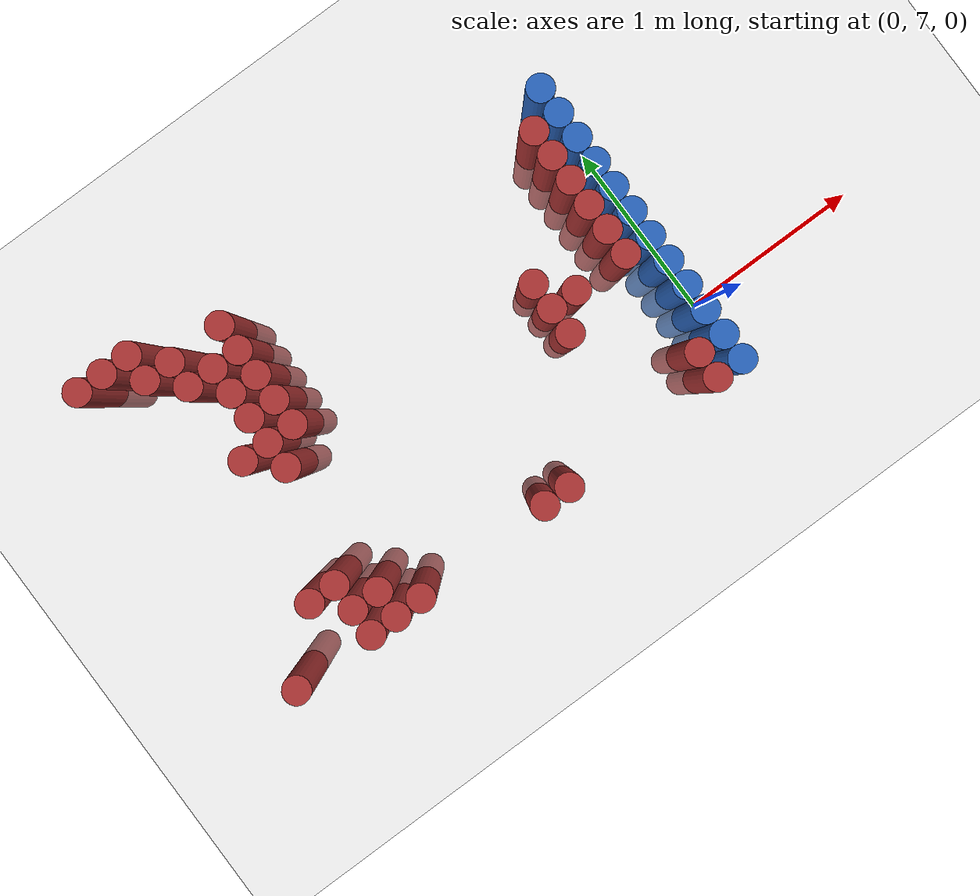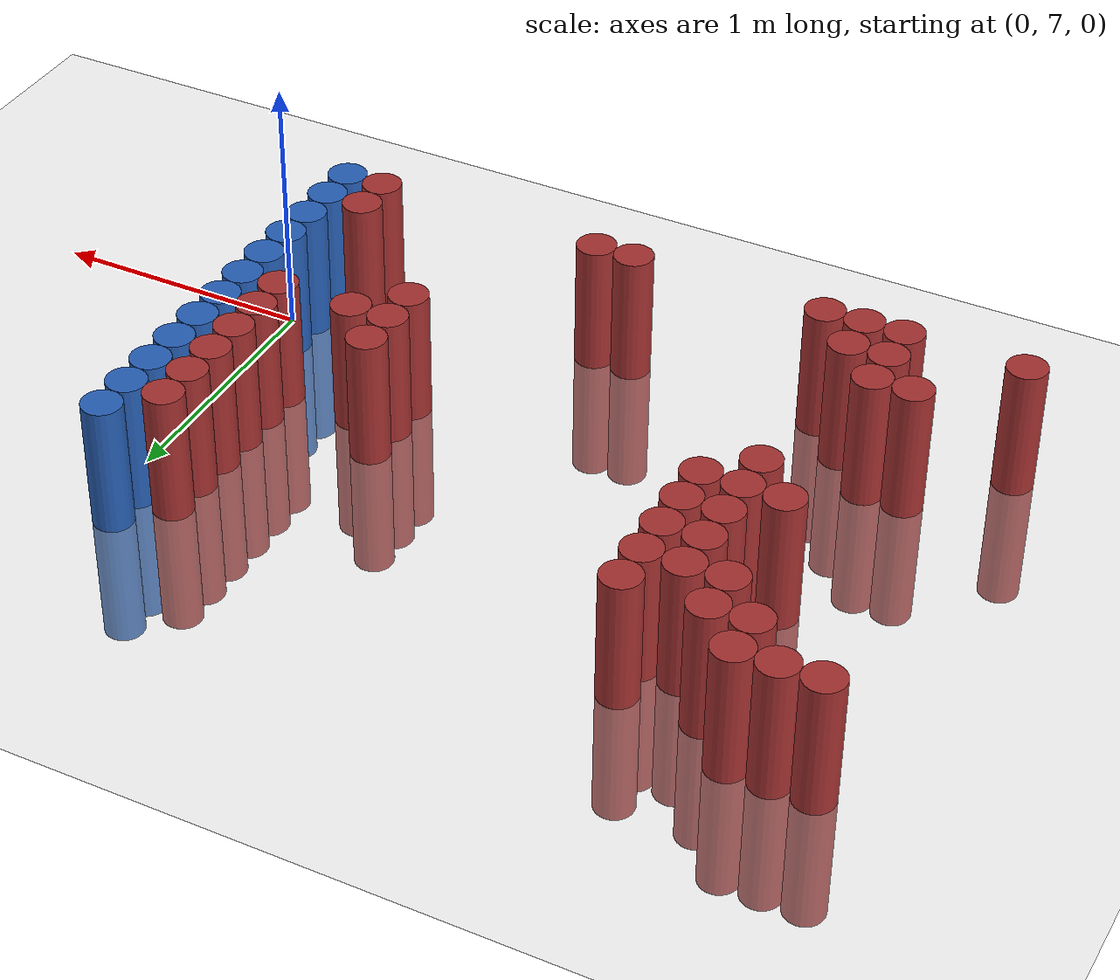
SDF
<sdf version="1.6">
 <world name="default">
  <model name="ground_plane">
   <static>1</static>
   <link name="link">
    <collision name="collision">
     <geometry><plane><normal>0 0 1</normal><size>100 100</size></plane></geometry>
     <surface><friction><ode><mu>100</mu><mu2>50</mu2></ode></friction></surface>
    </collision>
    <visual name="visual">
     <cast_shadows>0</cast_shadows>
     <geometry><plane><normal>0 0 1</normal><size>100 100</size></plane></geometry>
     <material>
      <script><uri>file://media/materials/scripts/gazebo.material</uri><name>Gazebo/Grey</name></script>
     </material>
    </visual>
   </link>
  </model>
  <model name="unit_cylinder_172">
   <static>1</static>
   <pose>-2.775000 6.675000 0.000000 0.000000 0.000000 0.000000</pose>
   <link name="link">
    <inertial>
     <mass>1</mass>
     <inertia><ixx>0.145833</ixx><ixy>0</ixy><ixz>0</ixz><iyy>0.145833</iyy><iyz>0</iyz><izz>0.125</izz></inertia>
    </inertial>
    <collision name="collision">
     <geometry><cylinder><radius>0.075000</radius><length>1</length></cylinder></geometry>
    </collision>
    <visual name="visual">
     <geometry><cylinder><radius>0.075000</radius><length>1</length></cylinder></geometry>
     <material>
      <ambient>0.648000 0.192000 0.192000 1</ambient>
      <diffuse>0.648000 0.192000 0.192000 1</diffuse>
     </material>
     <material>
      <script><name>Gazebo/Grey</name><uri>file://media/materials/scripts/gazebo.material</uri></script>
     </material>
    </visual>
   </link>
  </model>
  <model name="unit_cylinder_173">
   <static>1</static>
   <pose>-2.775000 8.475000 0.000000 0.000000 0.000000 0.000000</pose>
   <link name="link">
    <inertial>
     <mass>1</mass>
     <inertia><ixx>0.145833</ixx><ixy>0</ixy><ixz>0</ixz><iyy>0.145833</iyy><iyz>0</iyz><izz>0.125</izz></inertia>
    </inertial>
    <collision name="collision">
     <geometry><cylinder><radius>0.075000</radius><length>1</length></cylinder></geometry>
    </collision>
    <visual name="visual">
     <geometry><cylinder><radius>0.075000</radius><length>1</length></cylinder></geometry>
     <material>
      <ambient>0.648000 0.192000 0.192000 1</ambient>
      <diffuse>0.648000 0.192000 0.192000 1</diffuse>
     </material>
     <material>
      <script><name>Gazebo/Grey</name><uri>file://media/materials/scripts/gazebo.material</uri></script>
     </material>
    </visual>
   </link>
  </model>
  <model name="unit_cylinder_177">
   <static>1</static>
   <pose>-2.625000 8.475000 0.000000 0.000000 0.000000 0.000000</pose>
   <link name="link">
    <inertial>
     <mass>1</mass>
     <inertia><ixx>0.145833</ixx><ixy>0</ixy><ixz>0</ixz><iyy>0.145833</iyy><iyz>0</iyz><izz>0.125</izz></inertia>
    </inertial>
    <collision name="collision">
     <geometry><cylinder><radius>0.075000</radius><length>1</length></cylinder></geometry>
    </collision>
    <visual name="visual">
     <geometry><cylinder><radius>0.075000</radius><length>1</length></cylinder></geometry>
     <material>
      <ambient>0.648000 0.192000 0.192000 1</ambient>
      <diffuse>0.648000 0.192000 0.192000 1</diffuse>
     </material>
     <material>
      <script><name>Gazebo/Grey</name><uri>file://media/materials/scripts/gazebo.material</uri></script>
     </material>
    </visual>
   </link>
  </model>
  <model name="unit_cylinder_179">
   <static>1</static>
   <pose>-2.475000 6.975000 0.000000 0.000000 0.000000 0.000000</pose>
   <link name="link">
    <inertial>
     <mass>1</mass>
     <inertia><ixx>0.145833</ixx><ixy>0</ixy><ixz>0</ixz><iyy>0.145833</iyy><iyz>0</iyz><izz>0.125</izz></inertia>
    </inertial>
    <collision name="collision">
     <geometry><cylinder><radius>0.075000</radius><length>1</length></cylinder></geometry>
    </collision>
    <visual name="visual">
     <geometry><cylinder><radius>0.075000</radius><length>1</length></cylinder></geometry>
     <material>
      <ambient>0.648000 0.192000 0.192000 1</ambient>
      <diffuse>0.648000 0.192000 0.192000 1</diffuse>
     </material>
     <material>
      <script><name>Gazebo/Grey</name><uri>file://media/materials/scripts/gazebo.material</uri></script>
     </material>
    </visual>
   </link>
  </model>
  <model name="unit_cylinder_180">
   <static>1</static>
   <pose>-2.475000 8.325000 0.000000 0.000000 0.000000 0.000000</pose>
   <link name="link">
    <inertial>
     <mass>1</mass>
     <inertia><ixx>0.145833</ixx><ixy>0</ixy><ixz>0</ixz><iyy>0.145833</iyy><iyz>0</iyz><izz>0.125</izz></inertia>
    </inertial>
    <collision name="collision">
     <geometry><cylinder><radius>0.075000</radius><length>1</length></cylinder></geometry>
    </collision>
    <visual name="visual">
     <geometry><cylinder><radius>0.075000</radius><length>1</length></cylinder></geometry>
     <material>
      <ambient>0.648000 0.192000 0.192000 1</ambient>
      <diffuse>0.648000 0.192000 0.192000 1</diffuse>
     </material>
     <material>
      <script><name>Gazebo/Grey</name><uri>file://media/materials/scripts/gazebo.material</uri></script>
     </material>
    </visual>
   </link>
  </model>
  <model name="unit_cylinder_181">
   <static>1</static>
   <pose>-2.475000 8.475000 0.000000 0.000000 0.000000 0.000000</pose>
   <link name="link">
    <inertial>
     <mass>1</mass>
     <inertia><ixx>0.145833</ixx><ixy>0</ixy><ixz>0</ixz><iyy>0.145833</iyy><iyz>0</iyz><izz>0.125</izz></inertia>
    </inertial>
    <collision name="collision">
     <geometry><cylinder><radius>0.075000</radius><length>1</length></cylinder></geometry>
    </collision>
    <visual name="visual">
     <geometry><cylinder><radius>0.075000</radius><length>1</length></cylinder></geometry>
     <material>
      <ambient>0.648000 0.192000 0.192000 1</ambient>
      <diffuse>0.648000 0.192000 0.192000 1</diffuse>
     </material>
     <material>
      <script><name>Gazebo/Grey</name><uri>file://media/materials/scripts/gazebo.material</uri></script>
     </material>
    </visual>
   </link>
  </model>
  <model name="unit_cylinder_185">
   <static>1</static>
   <pose>-2.325000 6.675000 0.000000 0.000000 0.000000 0.000000</pose>
   <link name="link">
    <inertial>
     <mass>1</mass>
     <inertia><ixx>0.145833</ixx><ixy>0</ixy><ixz>0</ixz><iyy>0.145833</iyy><iyz>0</iyz><izz>0.125</izz></inertia>
    </inertial>
    <collision name="collision">
     <geometry><cylinder><radius>0.075000</radius><length>1</length></cylinder></geometry>
    </collision>
    <visual name="visual">
     <geometry><cylinder><radius>0.075000</radius><length>1</length></cylinder></geometry>
     <material>
      <ambient>0.648000 0.192000 0.192000 1</ambient>
      <diffuse>0.648000 0.192000 0.192000 1</diffuse>
     </material>
     <material>
      <script><name>Gazebo/Grey</name><uri>file://media/materials/scripts/gazebo.material</uri></script>
     </material>
    </visual>
   </link>
  </model>
  <model name="unit_cylinder_186">
   <static>1</static>
   <pose>-2.325000 6.825000 0.000000 0.000000 0.000000 0.000000</pose>
   <link name="link">
    <inertial>
     <mass>1</mass>
     <inertia><ixx>0.145833</ixx><ixy>0</ixy><ixz>0</ixz><iyy>0.145833</iyy><iyz>0</iyz><izz>0.125</izz></inertia>
    </inertial>
    <collision name="collision">
     <geometry><cylinder><radius>0.075000</radius><length>1</length></cylinder></geometry>
    </collision>
    <visual name="visual">
     <geometry><cylinder><radius>0.075000</radius><length>1</length></cylinder></geometry>
     <material>
      <ambient>0.648000 0.192000 0.192000 1</ambient>
      <diffuse>0.648000 0.192000 0.192000 1</diffuse>
     </material>
     <material>
      <script><name>Gazebo/Grey</name><uri>file://media/materials/scripts/gazebo.material</uri></script>
     </material>
    </visual>
   </link>
  </model>
  <model name="unit_cylinder_187">
   <static>1</static>
   <pose>-2.325000 6.975000 0.000000 0.000000 0.000000 0.000000</pose>
   <link name="link">
    <inertial>
     <mass>1</mass>
     <inertia><ixx>0.145833</ixx><ixy>0</ixy><ixz>0</ixz><iyy>0.145833</iyy><iyz>0</iyz><izz>0.125</izz></inertia>
    </inertial>
    <collision name="collision">
     <geometry><cylinder><radius>0.075000</radius><length>1</length></cylinder></geometry>
    </collision>
    <visual name="visual">
     <geometry><cylinder><radius>0.075000</radius><length>1</length></cylinder></geometry>
     <material>
      <ambient>0.648000 0.192000 0.192000 1</ambient>
      <diffuse>0.648000 0.192000 0.192000 1</diffuse>
     </material>
     <material>
      <script><name>Gazebo/Grey</name><uri>file://media/materials/scripts/gazebo.material</uri></script>
     </material>
    </visual>
   </link>
  </model>
  <model name="unit_cylinder_188">
   <static>1</static>
   <pose>-2.325000 7.725000 0.000000 0.000000 0.000000 0.000000</pose>
   <link name="link">
    <inertial>
     <mass>1</mass>
     <inertia><ixx>0.145833</ixx><ixy>0</ixy><ixz>0</ixz><iyy>0.145833</iyy><iyz>0</iyz><izz>0.125</izz></inertia>
    </inertial>
    <collision name="collision">
     <geometry><cylinder><radius>0.075000</radius><length>1</length></cylinder></geometry>
    </collision>
    <visual name="visual">
     <geometry><cylinder><radius>0.075000</radius><length>1</length></cylinder></geometry>
     <material>
      <ambient>0.648000 0.192000 0.192000 1</ambient>
      <diffuse>0.648000 0.192000 0.192000 1</diffuse>
     </material>
     <material>
      <script><name>Gazebo/Grey</name><uri>file://media/materials/scripts/gazebo.material</uri></script>
     </material>
    </visual>
   </link>
  </model>
  <model name="unit_cylinder_189">
   <static>1</static>
   <pose>-2.325000 8.175000 0.000000 0.000000 0.000000 0.000000</pose>
   <link name="link">
    <inertial>
     <mass>1</mass>
     <inertia><ixx>0.145833</ixx><ixy>0</ixy><ixz>0</ixz><iyy>0.145833</iyy><iyz>0</iyz><izz>0.125</izz></inertia>
    </inertial>
    <collision name="collision">
     <geometry><cylinder><radius>0.075000</radius><length>1</length></cylinder></geometry>
    </collision>
    <visual name="visual">
     <geometry><cylinder><radius>0.075000</radius><length>1</length></cylinder></geometry>
     <material>
      <ambient>0.648000 0.192000 0.192000 1</ambient>
      <diffuse>0.648000 0.192000 0.192000 1</diffuse>
     </material>
     <material>
      <script><name>Gazebo/Grey</name><uri>file://media/materials/scripts/gazebo.material</uri></script>
     </material>
    </visual>
   </link>
  </model>
  <model name="unit_cylinder_190">
   <static>1</static>
   <pose>-2.325000 8.325000 0.000000 0.000000 0.000000 0.000000</pose>
   <link name="link">
    <inertial>
     <mass>1</mass>
     <inertia><ixx>0.145833</ixx><ixy>0</ixy><ixz>0</ixz><iyy>0.145833</iyy><iyz>0</iyz><izz>0.125</izz></inertia>
    </inertial>
    <collision name="collision">
     <geometry><cylinder><radius>0.075000</radius><length>1</length></cylinder></geometry>
    </collision>
    <visual name="visual">
     <geometry><cylinder><radius>0.075000</radius><length>1</length></cylinder></geometry>
     <material>
      <ambient>0.648000 0.192000 0.192000 1</ambient>
      <diffuse>0.648000 0.192000 0.192000 1</diffuse>
     </material>
     <material>
      <script><name>Gazebo/Grey</name><uri>file://media/materials/scripts/gazebo.material</uri></script>
     </material>
    </visual>
   </link>
  </model>
  <model name="unit_cylinder_194">
   <static>1</static>
   <pose>-2.175000 6.675000 0.000000 0.000000 0.000000 0.000000</pose>
   <link name="link">
    <inertial>
     <mass>1</mass>
     <inertia><ixx>0.145833</ixx><ixy>0</ixy><ixz>0</ixz><iyy>0.145833</iyy><iyz>0</iyz><izz>0.125</izz></inertia>
    </inertial>
    <collision name="collision">
     <geometry><cylinder><radius>0.075000</radius><length>1</length></cylinder></geometry>
    </collision>
    <visual name="visual">
     <geometry><cylinder><radius>0.075000</radius><length>1</length></cylinder></geometry>
     <material>
      <ambient>0.648000 0.192000 0.192000 1</ambient>
      <diffuse>0.648000 0.192000 0.192000 1</diffuse>
     </material>
     <material>
      <script><name>Gazebo/Grey</name><uri>file://media/materials/scripts/gazebo.material</uri></script>
     </material>
    </visual>
   </link>
  </model>
  <model name="unit_cylinder_195">
   <static>1</static>
   <pose>-2.175000 6.825000 0.000000 0.000000 0.000000 0.000000</pose>
   <link name="link">
    <inertial>
     <mass>1</mass>
     <inertia><ixx>0.145833</ixx><ixy>0</ixy><ixz>0</ixz><iyy>0.145833</iyy><iyz>0</iyz><izz>0.125</izz></inertia>
    </inertial>
    <collision name="collision">
     <geometry><cylinder><radius>0.075000</radius><length>1</length></cylinder></geometry>
    </collision>
    <visual name="visual">
     <geometry><cylinder><radius>0.075000</radius><length>1</length></cylinder></geometry>
     <material>
      <ambient>0.648000 0.192000 0.192000 1</ambient>
      <diffuse>0.648000 0.192000 0.192000 1</diffuse>
     </material>
     <material>
      <script><name>Gazebo/Grey</name><uri>file://media/materials/scripts/gazebo.material</uri></script>
     </material>
    </visual>
   </link>
  </model>
  <model name="unit_cylinder_196">
   <static>1</static>
   <pose>-2.175000 7.575000 0.000000 0.000000 0.000000 0.000000</pose>
   <link name="link">
    <inertial>
     <mass>1</mass>
     <inertia><ixx>0.145833</ixx><ixy>0</ixy><ixz>0</ixz><iyy>0.145833</iyy><iyz>0</iyz><izz>0.125</izz></inertia>
    </inertial>
    <collision name="collision">
     <geometry><cylinder><radius>0.075000</radius><length>1</length></cylinder></geometry>
    </collision>
    <visual name="visual">
     <geometry><cylinder><radius>0.075000</radius><length>1</length></cylinder></geometry>
     <material>
      <ambient>0.648000 0.192000 0.192000 1</ambient>
      <diffuse>0.648000 0.192000 0.192000 1</diffuse>
     </material>
     <material>
      <script><name>Gazebo/Grey</name><uri>file://media/materials/scripts/gazebo.material</uri></script>
     </material>
    </visual>
   </link>
  </model>
  <model name="unit_cylinder_197">
   <static>1</static>
   <pose>-2.175000 7.725000 0.000000 0.000000 0.000000 0.000000</pose>
   <link name="link">
    <inertial>
     <mass>1</mass>
     <inertia><ixx>0.145833</ixx><ixy>0</ixy><ixz>0</ixz><iyy>0.145833</iyy><iyz>0</iyz><izz>0.125</izz></inertia>
    </inertial>
    <collision name="collision">
     <geometry><cylinder><radius>0.075000</radius><length>1</length></cylinder></geometry>
    </collision>
    <visual name="visual">
     <geometry><cylinder><radius>0.075000</radius><length>1</length></cylinder></geometry>
     <material>
      <ambient>0.648000 0.192000 0.192000 1</ambient>
      <diffuse>0.648000 0.192000 0.192000 1</diffuse>
     </material>
     <material>
      <script><name>Gazebo/Grey</name><uri>file://media/materials/scripts/gazebo.material</uri></script>
     </material>
    </visual>
   </link>
  </model>
  <model name="unit_cylinder_198">
   <static>1</static>
   <pose>-2.175000 7.875000 0.000000 0.000000 0.000000 0.000000</pose>
   <link name="link">
    <inertial>
     <mass>1</mass>
     <inertia><ixx>0.145833</ixx><ixy>0</ixy><ixz>0</ixz><iyy>0.145833</iyy><iyz>0</iyz><izz>0.125</izz></inertia>
    </inertial>
    <collision name="collision">
     <geometry><cylinder><radius>0.075000</radius><length>1</length></cylinder></geometry>
    </collision>
    <visual name="visual">
     <geometry><cylinder><radius>0.075000</radius><length>1</length></cylinder></geometry>
     <material>
      <ambient>0.648000 0.192000 0.192000 1</ambient>
      <diffuse>0.648000 0.192000 0.192000 1</diffuse>
     </material>
     <material>
      <script><name>Gazebo/Grey</name><uri>file://media/materials/scripts/gazebo.material</uri></script>
     </material>
    </visual>
   </link>
  </model>
  <model name="unit_cylinder_199">
   <static>1</static>
   <pose>-2.175000 8.025000 0.000000 0.000000 0.000000 0.000000</pose>
   <link name="link">
    <inertial>
     <mass>1</mass>
     <inertia><ixx>0.145833</ixx><ixy>0</ixy><ixz>0</ixz><iyy>0.145833</iyy><iyz>0</iyz><izz>0.125</izz></inertia>
    </inertial>
    <collision name="collision">
     <geometry><cylinder><radius>0.075000</radius><length>1</length></cylinder></geometry>
    </collision>
    <visual name="visual">
     <geometry><cylinder><radius>0.075000</radius><length>1</length></cylinder></geometry>
     <material>
      <ambient>0.648000 0.192000 0.192000 1</ambient>
      <diffuse>0.648000 0.192000 0.192000 1</diffuse>
     </material>
     <material>
      <script><name>Gazebo/Grey</name><uri>file://media/materials/scripts/gazebo.material</uri></script>
     </material>
    </visual>
   </link>
  </model>
  <model name="unit_cylinder_200">
   <static>1</static>
   <pose>-2.175000 8.175000 0.000000 0.000000 0.000000 0.000000</pose>
   <link name="link">
    <inertial>
     <mass>1</mass>
     <inertia><ixx>0.145833</ixx><ixy>0</ixy><ixz>0</ixz><iyy>0.145833</iyy><iyz>0</iyz><izz>0.125</izz></inertia>
    </inertial>
    <collision name="collision">
     <geometry><cylinder><radius>0.075000</radius><length>1</length></cylinder></geometry>
    </collision>
    <visual name="visual">
     <geometry><cylinder><radius>0.075000</radius><length>1</length></cylinder></geometry>
     <material>
      <ambient>0.648000 0.192000 0.192000 1</ambient>
      <diffuse>0.648000 0.192000 0.192000 1</diffuse>
     </material>
     <material>
      <script><name>Gazebo/Grey</name><uri>file://media/materials/scripts/gazebo.material</uri></script>
     </material>
    </visual>
   </link>
  </model>
  <model name="unit_cylinder_204">
   <static>1</static>
   <pose>-2.025000 6.675000 0.000000 0.000000 0.000000 0.000000</pose>
   <link name="link">
    <inertial>
     <mass>1</mass>
     <inertia><ixx>0.145833</ixx><ixy>0</ixy><ixz>0</ixz><iyy>0.145833</iyy><iyz>0</iyz><izz>0.125</izz></inertia>
    </inertial>
    <collision name="collision">
     <geometry><cylinder><radius>0.075000</radius><length>1</length></cylinder></geometry>
    </collision>
    <visual name="visual">
     <geometry><cylinder><radius>0.075000</radius><length>1</length></cylinder></geometry>
     <material>
      <ambient>0.648000 0.192000 0.192000 1</ambient>
      <diffuse>0.648000 0.192000 0.192000 1</diffuse>
     </material>
     <material>
      <script><name>Gazebo/Grey</name><uri>file://media/materials/scripts/gazebo.material</uri></script>
     </material>
    </visual>
   </link>
  </model>
  <model name="unit_cylinder_205">
   <static>1</static>
   <pose>-2.025000 7.725000 0.000000 0.000000 0.000000 0.000000</pose>
   <link name="link">
    <inertial>
     <mass>1</mass>
     <inertia><ixx>0.145833</ixx><ixy>0</ixy><ixz>0</ixz><iyy>0.145833</iyy><iyz>0</iyz><izz>0.125</izz></inertia>
    </inertial>
    <collision name="collision">
     <geometry><cylinder><radius>0.075000</radius><length>1</length></cylinder></geometry>
    </collision>
    <visual name="visual">
     <geometry><cylinder><radius>0.075000</radius><length>1</length></cylinder></geometry>
     <material>
      <ambient>0.648000 0.192000 0.192000 1</ambient>
      <diffuse>0.648000 0.192000 0.192000 1</diffuse>
     </material>
     <material>
      <script><name>Gazebo/Grey</name><uri>file://media/materials/scripts/gazebo.material</uri></script>
     </material>
    </visual>
   </link>
  </model>
  <model name="unit_cylinder_206">
   <static>1</static>
   <pose>-2.025000 7.875000 0.000000 0.000000 0.000000 0.000000</pose>
   <link name="link">
    <inertial>
     <mass>1</mass>
     <inertia><ixx>0.145833</ixx><ixy>0</ixy><ixz>0</ixz><iyy>0.145833</iyy><iyz>0</iyz><izz>0.125</izz></inertia>
    </inertial>
    <collision name="collision">
     <geometry><cylinder><radius>0.075000</radius><length>1</length></cylinder></geometry>
    </collision>
    <visual name="visual">
     <geometry><cylinder><radius>0.075000</radius><length>1</length></cylinder></geometry>
     <material>
      <ambient>0.648000 0.192000 0.192000 1</ambient>
      <diffuse>0.648000 0.192000 0.192000 1</diffuse>
     </material>
     <material>
      <script><name>Gazebo/Grey</name><uri>file://media/materials/scripts/gazebo.material</uri></script>
     </material>
    </visual>
   </link>
  </model>
  <model name="unit_cylinder_207">
   <static>1</static>
   <pose>-2.025000 8.025000 0.000000 0.000000 0.000000 0.000000</pose>
   <link name="link">
    <inertial>
     <mass>1</mass>
     <inertia><ixx>0.145833</ixx><ixy>0</ixy><ixz>0</ixz><iyy>0.145833</iyy><iyz>0</iyz><izz>0.125</izz></inertia>
    </inertial>
    <collision name="collision">
     <geometry><cylinder><radius>0.075000</radius><length>1</length></cylinder></geometry>
    </collision>
    <visual name="visual">
     <geometry><cylinder><radius>0.075000</radius><length>1</length></cylinder></geometry>
     <material>
      <ambient>0.648000 0.192000 0.192000 1</ambient>
      <diffuse>0.648000 0.192000 0.192000 1</diffuse>
     </material>
     <material>
      <script><name>Gazebo/Grey</name><uri>file://media/materials/scripts/gazebo.material</uri></script>
     </material>
    </visual>
   </link>
  </model>
  <model name="unit_cylinder_208">
   <static>1</static>
   <pose>-2.025000 8.175000 0.000000 0.000000 0.000000 0.000000</pose>
   <link name="link">
    <inertial>
     <mass>1</mass>
     <inertia><ixx>0.145833</ixx><ixy>0</ixy><ixz>0</ixz><iyy>0.145833</iyy><iyz>0</iyz><izz>0.125</izz></inertia>
    </inertial>
    <collision name="collision">
     <geometry><cylinder><radius>0.075000</radius><length>1</length></cylinder></geometry>
    </collision>
    <visual name="visual">
     <geometry><cylinder><radius>0.075000</radius><length>1</length></cylinder></geometry>
     <material>
      <ambient>0.648000 0.192000 0.192000 1</ambient>
      <diffuse>0.648000 0.192000 0.192000 1</diffuse>
     </material>
     <material>
      <script><name>Gazebo/Grey</name><uri>file://media/materials/scripts/gazebo.material</uri></script>
     </material>
    </visual>
   </link>
  </model>
  <model name="unit_cylinder_209">
   <static>1</static>
   <pose>-2.025000 8.325000 0.000000 0.000000 0.000000 0.000000</pose>
   <link name="link">
    <inertial>
     <mass>1</mass>
     <inertia><ixx>0.145833</ixx><ixy>0</ixy><ixz>0</ixz><iyy>0.145833</iyy><iyz>0</iyz><izz>0.125</izz></inertia>
    </inertial>
    <collision name="collision">
     <geometry><cylinder><radius>0.075000</radius><length>1</length></cylinder></geometry>
    </collision>
    <visual name="visual">
     <geometry><cylinder><radius>0.075000</radius><length>1</length></cylinder></geometry>
     <material>
      <ambient>0.648000 0.192000 0.192000 1</ambient>
      <diffuse>0.648000 0.192000 0.192000 1</diffuse>
     </material>
     <material>
      <script><name>Gazebo/Grey</name><uri>file://media/materials/scripts/gazebo.material</uri></script>
     </material>
    </visual>
   </link>
  </model>
  <model name="unit_cylinder_227">
   <static>1</static>
   <pose>-1.275000 6.675000 0.000000 0.000000 0.000000 0.000000</pose>
   <link name="link">
    <inertial>
     <mass>1</mass>
     <inertia><ixx>0.145833</ixx><ixy>0</ixy><ixz>0</ixz><iyy>0.145833</iyy><iyz>0</iyz><izz>0.125</izz></inertia>
    </inertial>
    <collision name="collision">
     <geometry><cylinder><radius>0.075000</radius><length>1</length></cylinder></geometry>
    </collision>
    <visual name="visual">
     <geometry><cylinder><radius>0.075000</radius><length>1</length></cylinder></geometry>
     <material>
      <ambient>0.648000 0.192000 0.192000 1</ambient>
      <diffuse>0.648000 0.192000 0.192000 1</diffuse>
     </material>
     <material>
      <script><name>Gazebo/Grey</name><uri>file://media/materials/scripts/gazebo.material</uri></script>
     </material>
    </visual>
   </link>
  </model>
  <model name="unit_cylinder_233">
   <static>1</static>
   <pose>-1.125000 6.675000 0.000000 0.000000 0.000000 0.000000</pose>
   <link name="link">
    <inertial>
     <mass>1</mass>
     <inertia><ixx>0.145833</ixx><ixy>0</ixy><ixz>0</ixz><iyy>0.145833</iyy><iyz>0</iyz><izz>0.125</izz></inertia>
    </inertial>
    <collision name="collision">
     <geometry><cylinder><radius>0.075000</radius><length>1</length></cylinder></geometry>
    </collision>
    <visual name="visual">
     <geometry><cylinder><radius>0.075000</radius><length>1</length></cylinder></geometry>
     <material>
      <ambient>0.648000 0.192000 0.192000 1</ambient>
      <diffuse>0.648000 0.192000 0.192000 1</diffuse>
     </material>
     <material>
      <script><name>Gazebo/Grey</name><uri>file://media/materials/scripts/gazebo.material</uri></script>
     </material>
    </visual>
   </link>
  </model>
  <model name="unit_cylinder_245">
   <static>1</static>
   <pose>-0.675000 7.275000 0.000000 0.000000 0.000000 0.000000</pose>
   <link name="link">
    <inertial>
     <mass>1</mass>
     <inertia><ixx>0.145833</ixx><ixy>0</ixy><ixz>0</ixz><iyy>0.145833</iyy><iyz>0</iyz><izz>0.125</izz></inertia>
    </inertial>
    <collision name="collision">
     <geometry><cylinder><radius>0.075000</radius><length>1</length></cylinder></geometry>
    </collision>
    <visual name="visual">
     <geometry><cylinder><radius>0.075000</radius><length>1</length></cylinder></geometry>
     <material>
      <ambient>0.648000 0.192000 0.192000 1</ambient>
      <diffuse>0.648000 0.192000 0.192000 1</diffuse>
     </material>
     <material>
      <script><name>Gazebo/Grey</name><uri>file://media/materials/scripts/gazebo.material</uri></script>
     </material>
    </visual>
   </link>
  </model>
  <model name="unit_cylinder_246">
   <static>1</static>
   <pose>-0.675000 7.425000 0.000000 0.000000 0.000000 0.000000</pose>
   <link name="link">
    <inertial>
     <mass>1</mass>
     <inertia><ixx>0.145833</ixx><ixy>0</ixy><ixz>0</ixz><iyy>0.145833</iyy><iyz>0</iyz><izz>0.125</izz></inertia>
    </inertial>
    <collision name="collision">
     <geometry><cylinder><radius>0.075000</radius><length>1</length></cylinder></geometry>
    </collision>
    <visual name="visual">
     <geometry><cylinder><radius>0.075000</radius><length>1</length></cylinder></geometry>
     <material>
      <ambient>0.648000 0.192000 0.192000 1</ambient>
      <diffuse>0.648000 0.192000 0.192000 1</diffuse>
     </material>
     <material>
      <script><name>Gazebo/Grey</name><uri>file://media/materials/scripts/gazebo.material</uri></script>
     </material>
    </visual>
   </link>
  </model>
  <model name="unit_cylinder_247">
   <static>1</static>
   <pose>-0.675000 7.575000 0.000000 0.000000 0.000000 0.000000</pose>
   <link name="link">
    <inertial>
     <mass>1</mass>
     <inertia><ixx>0.145833</ixx><ixy>0</ixy><ixz>0</ixz><iyy>0.145833</iyy><iyz>0</iyz><izz>0.125</izz></inertia>
    </inertial>
    <collision name="collision">
     <geometry><cylinder><radius>0.075000</radius><length>1</length></cylinder></geometry>
    </collision>
    <visual name="visual">
     <geometry><cylinder><radius>0.075000</radius><length>1</length></cylinder></geometry>
     <material>
      <ambient>0.648000 0.192000 0.192000 1</ambient>
      <diffuse>0.648000 0.192000 0.192000 1</diffuse>
     </material>
     <material>
      <script><name>Gazebo/Grey</name><uri>file://media/materials/scripts/gazebo.material</uri></script>
     </material>
    </visual>
   </link>
  </model>
  <model name="unit_cylinder_250">
   <static>1</static>
   <pose>-0.525000 7.425000 0.000000 0.000000 0.000000 0.000000</pose>
   <link name="link">
    <inertial>
     <mass>1</mass>
     <inertia><ixx>0.145833</ixx><ixy>0</ixy><ixz>0</ixz><iyy>0.145833</iyy><iyz>0</iyz><izz>0.125</izz></inertia>
    </inertial>
    <collision name="collision">
     <geometry><cylinder><radius>0.075000</radius><length>1</length></cylinder></geometry>
    </collision>
    <visual name="visual">
     <geometry><cylinder><radius>0.075000</radius><length>1</length></cylinder></geometry>
     <material>
      <ambient>0.648000 0.192000 0.192000 1</ambient>
      <diffuse>0.648000 0.192000 0.192000 1</diffuse>
     </material>
     <material>
      <script><name>Gazebo/Grey</name><uri>file://media/materials/scripts/gazebo.material</uri></script>
     </material>
    </visual>
   </link>
  </model>
  <model name="unit_cylinder_265">
   <static>1</static>
   <pose>-0.225000 6.675000 0.000000 0.000000 0.000000 0.000000</pose>
   <link name="link">
    <inertial>
     <mass>1</mass>
     <inertia><ixx>0.145833</ixx><ixy>0</ixy><ixz>0</ixz><iyy>0.145833</iyy><iyz>0</iyz><izz>0.125</izz></inertia>
    </inertial>
    <collision name="collision">
     <geometry><cylinder><radius>0.075000</radius><length>1</length></cylinder></geometry>
    </collision>
    <visual name="visual">
     <geometry><cylinder><radius>0.075000</radius><length>1</length></cylinder></geometry>
     <material>
      <ambient>0.648000 0.192000 0.192000 1</ambient>
      <diffuse>0.648000 0.192000 0.192000 1</diffuse>
     </material>
     <material>
      <script><name>Gazebo/Grey</name><uri>file://media/materials/scripts/gazebo.material</uri></script>
     </material>
    </visual>
   </link>
  </model>
  <model name="unit_cylinder_266">
   <static>1</static>
   <pose>-0.225000 6.825000 0.000000 0.000000 0.000000 0.000000</pose>
   <link name="link">
    <inertial>
     <mass>1</mass>
     <inertia><ixx>0.145833</ixx><ixy>0</ixy><ixz>0</ixz><iyy>0.145833</iyy><iyz>0</iyz><izz>0.125</izz></inertia>
    </inertial>
    <collision name="collision">
     <geometry><cylinder><radius>0.075000</radius><length>1</length></cylinder></geometry>
    </collision>
    <visual name="visual">
     <geometry><cylinder><radius>0.075000</radius><length>1</length></cylinder></geometry>
     <material>
      <ambient>0.648000 0.192000 0.192000 1</ambient>
      <diffuse>0.648000 0.192000 0.192000 1</diffuse>
     </material>
     <material>
      <script><name>Gazebo/Grey</name><uri>file://media/materials/scripts/gazebo.material</uri></script>
     </material>
    </visual>
   </link>
  </model>
  <model name="unit_cylinder_267">
   <static>1</static>
   <pose>-0.225000 7.425000 0.000000 0.000000 0.000000 0.000000</pose>
   <link name="link">
    <inertial>
     <mass>1</mass>
     <inertia><ixx>0.145833</ixx><ixy>0</ixy><ixz>0</ixz><iyy>0.145833</iyy><iyz>0</iyz><izz>0.125</izz></inertia>
    </inertial>
    <collision name="collision">
     <geometry><cylinder><radius>0.075000</radius><length>1</length></cylinder></geometry>
    </collision>
    <visual name="visual">
     <geometry><cylinder><radius>0.075000</radius><length>1</length></cylinder></geometry>
     <material>
      <ambient>0.648000 0.192000 0.192000 1</ambient>
      <diffuse>0.648000 0.192000 0.192000 1</diffuse>
     </material>
     <material>
      <script><name>Gazebo/Grey</name><uri>file://media/materials/scripts/gazebo.material</uri></script>
     </material>
    </visual>
   </link>
  </model>
  <model name="unit_cylinder_268">
   <static>1</static>
   <pose>-0.225000 7.575000 0.000000 0.000000 0.000000 0.000000</pose>
   <link name="link">
    <inertial>
     <mass>1</mass>
     <inertia><ixx>0.145833</ixx><ixy>0</ixy><ixz>0</ixz><iyy>0.145833</iyy><iyz>0</iyz><izz>0.125</izz></inertia>
    </inertial>
    <collision name="collision">
     <geometry><cylinder><radius>0.075000</radius><length>1</length></cylinder></geometry>
    </collision>
    <visual name="visual">
     <geometry><cylinder><radius>0.075000</radius><length>1</length></cylinder></geometry>
     <material>
      <ambient>0.648000 0.192000 0.192000 1</ambient>
      <diffuse>0.648000 0.192000 0.192000 1</diffuse>
     </material>
     <material>
      <script><name>Gazebo/Grey</name><uri>file://media/materials/scripts/gazebo.material</uri></script>
     </material>
    </visual>
   </link>
  </model>
  <model name="unit_cylinder_269">
   <static>1</static>
   <pose>-0.225000 7.725000 0.000000 0.000000 0.000000 0.000000</pose>
   <link name="link">
    <inertial>
     <mass>1</mass>
     <inertia><ixx>0.145833</ixx><ixy>0</ixy><ixz>0</ixz><iyy>0.145833</iyy><iyz>0</iyz><izz>0.125</izz></inertia>
    </inertial>
    <collision name="collision">
     <geometry><cylinder><radius>0.075000</radius><length>1</length></cylinder></geometry>
    </collision>
    <visual name="visual">
     <geometry><cylinder><radius>0.075000</radius><length>1</length></cylinder></geometry>
     <material>
      <ambient>0.648000 0.192000 0.192000 1</ambient>
      <diffuse>0.648000 0.192000 0.192000 1</diffuse>
     </material>
     <material>
      <script><name>Gazebo/Grey</name><uri>file://media/materials/scripts/gazebo.material</uri></script>
     </material>
    </visual>
   </link>
  </model>
  <model name="unit_cylinder_270">
   <static>1</static>
   <pose>-0.225000 7.875000 0.000000 0.000000 0.000000 0.000000</pose>
   <link name="link">
    <inertial>
     <mass>1</mass>
     <inertia><ixx>0.145833</ixx><ixy>0</ixy><ixz>0</ixz><iyy>0.145833</iyy><iyz>0</iyz><izz>0.125</izz></inertia>
    </inertial>
    <collision name="collision">
     <geometry><cylinder><radius>0.075000</radius><length>1</length></cylinder></geometry>
    </collision>
    <visual name="visual">
     <geometry><cylinder><radius>0.075000</radius><length>1</length></cylinder></geometry>
     <material>
      <ambient>0.648000 0.192000 0.192000 1</ambient>
      <diffuse>0.648000 0.192000 0.192000 1</diffuse>
     </material>
     <material>
      <script><name>Gazebo/Grey</name><uri>file://media/materials/scripts/gazebo.material</uri></script>
     </material>
    </visual>
   </link>
  </model>
  <model name="unit_cylinder_271">
   <static>1</static>
   <pose>-0.225000 8.025000 0.000000 0.000000 0.000000 0.000000</pose>
   <link name="link">
    <inertial>
     <mass>1</mass>
     <inertia><ixx>0.145833</ixx><ixy>0</ixy><ixz>0</ixz><iyy>0.145833</iyy><iyz>0</iyz><izz>0.125</izz></inertia>
    </inertial>
    <collision name="collision">
     <geometry><cylinder><radius>0.075000</radius><length>1</length></cylinder></geometry>
    </collision>
    <visual name="visual">
     <geometry><cylinder><radius>0.075000</radius><length>1</length></cylinder></geometry>
     <material>
      <ambient>0.648000 0.192000 0.192000 1</ambient>
      <diffuse>0.648000 0.192000 0.192000 1</diffuse>
     </material>
     <material>
      <script><name>Gazebo/Grey</name><uri>file://media/materials/scripts/gazebo.material</uri></script>
     </material>
    </visual>
   </link>
  </model>
  <model name="unit_cylinder_272">
   <static>1</static>
   <pose>-0.225000 8.175000 0.000000 0.000000 0.000000 0.000000</pose>
   <link name="link">
    <inertial>
     <mass>1</mass>
     <inertia><ixx>0.145833</ixx><ixy>0</ixy><ixz>0</ixz><iyy>0.145833</iyy><iyz>0</iyz><izz>0.125</izz></inertia>
    </inertial>
    <collision name="collision">
     <geometry><cylinder><radius>0.075000</radius><length>1</length></cylinder></geometry>
    </collision>
    <visual name="visual">
     <geometry><cylinder><radius>0.075000</radius><length>1</length></cylinder></geometry>
     <material>
      <ambient>0.648000 0.192000 0.192000 1</ambient>
      <diffuse>0.648000 0.192000 0.192000 1</diffuse>
     </material>
     <material>
      <script><name>Gazebo/Grey</name><uri>file://media/materials/scripts/gazebo.material</uri></script>
     </material>
    </visual>
   </link>
  </model>
  <model name="unit_cylinder_287">
   <static>1</static>
   <pose>-0.075000 6.675000 0.000000 0.000000 0.000000 0.000000</pose>
   <link name="link">
    <inertial>
     <mass>1</mass>
     <inertia><ixx>0.145833</ixx><ixy>0</ixy><ixz>0</ixz><iyy>0.145833</iyy><iyz>0</iyz><izz>0.125</izz></inertia>
    </inertial>
    <collision name="collision">
     <geometry><cylinder><radius>0.075000</radius><length>1</length></cylinder></geometry>
    </collision>
    <visual name="visual">
     <geometry><cylinder><radius>0.075000</radius><length>1</length></cylinder></geometry>
     <material>
      <ambient>0.152000 0.379000 0.720000 1</ambient>
      <diffuse>0.152000 0.379000 0.720000 1</diffuse>
     </material>
     <material>
      <script><name>Gazebo/Grey</name><uri>file://media/materials/scripts/gazebo.material</uri></script>
     </material>
    </visual>
   </link>
  </model>
  <model name="unit_cylinder_288">
   <static>1</static>
   <pose>-0.075000 6.825000 0.000000 0.000000 0.000000 0.000000</pose>
   <link name="link">
    <inertial>
     <mass>1</mass>
     <inertia><ixx>0.145833</ixx><ixy>0</ixy><ixz>0</ixz><iyy>0.145833</iyy><iyz>0</iyz><izz>0.125</izz></inertia>
    </inertial>
    <collision name="collision">
     <geometry><cylinder><radius>0.075000</radius><length>1</length></cylinder></geometry>
    </collision>
    <visual name="visual">
     <geometry><cylinder><radius>0.075000</radius><length>1</length></cylinder></geometry>
     <material>
      <ambient>0.152000 0.379000 0.720000 1</ambient>
      <diffuse>0.152000 0.379000 0.720000 1</diffuse>
     </material>
     <material>
      <script><name>Gazebo/Grey</name><uri>file://media/materials/scripts/gazebo.material</uri></script>
     </material>
    </visual>
   </link>
  </model>
  <model name="unit_cylinder_289">
   <static>1</static>
   <pose>-0.075000 6.975000 0.000000 0.000000 0.000000 0.000000</pose>
   <link name="link">
    <inertial>
     <mass>1</mass>
     <inertia><ixx>0.145833</ixx><ixy>0</ixy><ixz>0</ixz><iyy>0.145833</iyy><iyz>0</iyz><izz>0.125</izz></inertia>
    </inertial>
    <collision name="collision">
     <geometry><cylinder><radius>0.075000</radius><length>1</length></cylinder></geometry>
    </collision>
    <visual name="visual">
     <geometry><cylinder><radius>0.075000</radius><length>1</length></cylinder></geometry>
     <material>
      <ambient>0.152000 0.379000 0.720000 1</ambient>
      <diffuse>0.152000 0.379000 0.720000 1</diffuse>
     </material>
     <material>
      <script><name>Gazebo/Grey</name><uri>file://media/materials/scripts/gazebo.material</uri></script>
     </material>
    </visual>
   </link>
  </model>
  <model name="unit_cylinder_290">
   <static>1</static>
   <pose>-0.075000 7.125000 0.000000 0.000000 0.000000 0.000000</pose>
   <link name="link">
    <inertial>
     <mass>1</mass>
     <inertia><ixx>0.145833</ixx><ixy>0</ixy><ixz>0</ixz><iyy>0.145833</iyy><iyz>0</iyz><izz>0.125</izz></inertia>
    </inertial>
    <collision name="collision">
     <geometry><cylinder><radius>0.075000</radius><length>1</length></cylinder></geometry>
    </collision>
    <visual name="visual">
     <geometry><cylinder><radius>0.075000</radius><length>1</length></cylinder></geometry>
     <material>
      <ambient>0.152000 0.379000 0.720000 1</ambient>
      <diffuse>0.152000 0.379000 0.720000 1</diffuse>
     </material>
     <material>
      <script><name>Gazebo/Grey</name><uri>file://media/materials/scripts/gazebo.material</uri></script>
     </material>
    </visual>
   </link>
  </model>
  <model name="unit_cylinder_291">
   <static>1</static>
   <pose>-0.075000 7.275000 0.000000 0.000000 0.000000 0.000000</pose>
   <link name="link">
    <inertial>
     <mass>1</mass>
     <inertia><ixx>0.145833</ixx><ixy>0</ixy><ixz>0</ixz><iyy>0.145833</iyy><iyz>0</iyz><izz>0.125</izz></inertia>
    </inertial>
    <collision name="collision">
     <geometry><cylinder><radius>0.075000</radius><length>1</length></cylinder></geometry>
    </collision>
    <visual name="visual">
     <geometry><cylinder><radius>0.075000</radius><length>1</length></cylinder></geometry>
     <material>
      <ambient>0.152000 0.379000 0.720000 1</ambient>
      <diffuse>0.152000 0.379000 0.720000 1</diffuse>
     </material>
     <material>
      <script><name>Gazebo/Grey</name><uri>file://media/materials/scripts/gazebo.material</uri></script>
     </material>
    </visual>
   </link>
  </model>
  <model name="unit_cylinder_292">
   <static>1</static>
   <pose>-0.075000 7.425000 0.000000 0.000000 0.000000 0.000000</pose>
   <link name="link">
    <inertial>
     <mass>1</mass>
     <inertia><ixx>0.145833</ixx><ixy>0</ixy><ixz>0</ixz><iyy>0.145833</iyy><iyz>0</iyz><izz>0.125</izz></inertia>
    </inertial>
    <collision name="collision">
     <geometry><cylinder><radius>0.075000</radius><length>1</length></cylinder></geometry>
    </collision>
    <visual name="visual">
     <geometry><cylinder><radius>0.075000</radius><length>1</length></cylinder></geometry>
     <material>
      <ambient>0.152000 0.379000 0.720000 1</ambient>
      <diffuse>0.152000 0.379000 0.720000 1</diffuse>
     </material>
     <material>
      <script><name>Gazebo/Grey</name><uri>file://media/materials/scripts/gazebo.material</uri></script>
     </material>
    </visual>
   </link>
  </model>
  <model name="unit_cylinder_293">
   <static>1</static>
   <pose>-0.075000 7.575000 0.000000 0.000000 0.000000 0.000000</pose>
   <link name="link">
    <inertial>
     <mass>1</mass>
     <inertia><ixx>0.145833</ixx><ixy>0</ixy><ixz>0</ixz><iyy>0.145833</iyy><iyz>0</iyz><izz>0.125</izz></inertia>
    </inertial>
    <collision name="collision">
     <geometry><cylinder><radius>0.075000</radius><length>1</length></cylinder></geometry>
    </collision>
    <visual name="visual">
     <geometry><cylinder><radius>0.075000</radius><length>1</length></cylinder></geometry>
     <material>
      <ambient>0.152000 0.379000 0.720000 1</ambient>
      <diffuse>0.152000 0.379000 0.720000 1</diffuse>
     </material>
     <material>
      <script><name>Gazebo/Grey</name><uri>file://media/materials/scripts/gazebo.material</uri></script>
     </material>
    </visual>
   </link>
  </model>
  <model name="unit_cylinder_294">
   <static>1</static>
   <pose>-0.075000 7.725000 0.000000 0.000000 0.000000 0.000000</pose>
   <link name="link">
    <inertial>
     <mass>1</mass>
     <inertia><ixx>0.145833</ixx><ixy>0</ixy><ixz>0</ixz><iyy>0.145833</iyy><iyz>0</iyz><izz>0.125</izz></inertia>
    </inertial>
    <collision name="collision">
     <geometry><cylinder><radius>0.075000</radius><length>1</length></cylinder></geometry>
    </collision>
    <visual name="visual">
     <geometry><cylinder><radius>0.075000</radius><length>1</length></cylinder></geometry>
     <material>
      <ambient>0.152000 0.379000 0.720000 1</ambient>
      <diffuse>0.152000 0.379000 0.720000 1</diffuse>
     </material>
     <material>
      <script><name>Gazebo/Grey</name><uri>file://media/materials/scripts/gazebo.material</uri></script>
     </material>
    </visual>
   </link>
  </model>
  <model name="unit_cylinder_295">
   <static>1</static>
   <pose>-0.075000 7.875000 0.000000 0.000000 0.000000 0.000000</pose>
   <link name="link">
    <inertial>
     <mass>1</mass>
     <inertia><ixx>0.145833</ixx><ixy>0</ixy><ixz>0</ixz><iyy>0.145833</iyy><iyz>0</iyz><izz>0.125</izz></inertia>
    </inertial>
    <collision name="collision">
     <geometry><cylinder><radius>0.075000</radius><length>1</length></cylinder></geometry>
    </collision>
    <visual name="visual">
     <geometry><cylinder><radius>0.075000</radius><length>1</length></cylinder></geometry>
     <material>
      <ambient>0.152000 0.379000 0.720000 1</ambient>
      <diffuse>0.152000 0.379000 0.720000 1</diffuse>
     </material>
     <material>
      <script><name>Gazebo/Grey</name><uri>file://media/materials/scripts/gazebo.material</uri></script>
     </material>
    </visual>
   </link>
  </model>
  <model name="unit_cylinder_296">
   <static>1</static>
   <pose>-0.075000 8.025000 0.000000 0.000000 0.000000 0.000000</pose>
   <link name="link">
    <inertial>
     <mass>1</mass>
     <inertia><ixx>0.145833</ixx><ixy>0</ixy><ixz>0</ixz><iyy>0.145833</iyy><iyz>0</iyz><izz>0.125</izz></inertia>
    </inertial>
    <collision name="collision">
     <geometry><cylinder><radius>0.075000</radius><length>1</length></cylinder></geometry>
    </collision>
    <visual name="visual">
     <geometry><cylinder><radius>0.075000</radius><length>1</length></cylinder></geometry>
     <material>
      <ambient>0.152000 0.379000 0.720000 1</ambient>
      <diffuse>0.152000 0.379000 0.720000 1</diffuse>
     </material>
     <material>
      <script><name>Gazebo/Grey</name><uri>file://media/materials/scripts/gazebo.material</uri></script>
     </material>
    </visual>
   </link>
  </model>
  <model name="unit_cylinder_297">
   <static>1</static>
   <pose>-0.075000 8.175000 0.000000 0.000000 0.000000 0.000000</pose>
   <link name="link">
    <inertial>
     <mass>1</mass>
     <inertia><ixx>0.145833</ixx><ixy>0</ixy><ixz>0</ixz><iyy>0.145833</iyy><iyz>0</iyz><izz>0.125</izz></inertia>
    </inertial>
    <collision name="collision">
     <geometry><cylinder><radius>0.075000</radius><length>1</length></cylinder></geometry>
    </collision>
    <visual name="visual">
     <geometry><cylinder><radius>0.075000</radius><length>1</length></cylinder></geometry>
     <material>
      <ambient>0.152000 0.379000 0.720000 1</ambient>
      <diffuse>0.152000 0.379000 0.720000 1</diffuse>
     </material>
     <material>
      <script><name>Gazebo/Grey</name><uri>file://media/materials/scripts/gazebo.material</uri></script>
     </material>
    </visual>
   </link>
  </model>
  <model name="unit_cylinder_298">
   <static>1</static>
   <pose>-0.075000 8.325000 0.000000 0.000000 0.000000 0.000000</pose>
   <link name="link">
    <inertial>
     <mass>1</mass>
     <inertia><ixx>0.145833</ixx><ixy>0</ixy><ixz>0</ixz><iyy>0.145833</iyy><iyz>0</iyz><izz>0.125</izz></inertia>
    </inertial>
    <collision name="collision">
     <geometry><cylinder><radius>0.075000</radius><length>1</length></cylinder></geometry>
    </collision>
    <visual name="visual">
     <geometry><cylinder><radius>0.075000</radius><length>1</length></cylinder></geometry>
     <material>
      <ambient>0.152000 0.379000 0.720000 1</ambient>
      <diffuse>0.152000 0.379000 0.720000 1</diffuse>
     </material>
     <material>
      <script><name>Gazebo/Grey</name><uri>file://media/materials/scripts/gazebo.material</uri></script>
     </material>
    </visual>
   </link>
  </model>
 </world>
</sdf>
